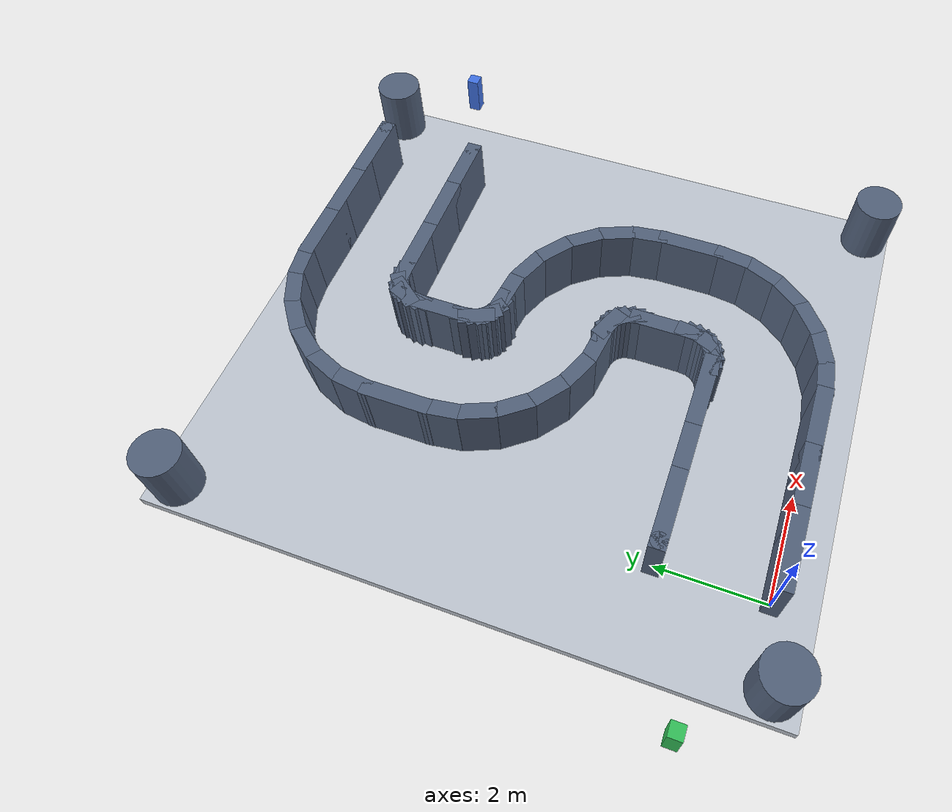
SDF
<?xml version="1.0"?>
<sdf version="1.6">
  <world name="s_shape">
    <light type="directional" name="sun">
      <pose>0 0 10 0 0 0</pose>
      <diffuse>0.8 0.8 0.8 1</diffuse>
      <specular>0.2 0.2 0.2 1</specular>
      <direction>-0.5 0.5 -1</direction>
    </light>
    <light type="ambient" name="ambient_light">
      <diffuse>0.3 0.3 0.3 1</diffuse>
    </light>
    <model name="ground_plane">
      <static>true</static>
      <pose>3.500 5.000 -0.1 0 0 0</pose>
      <link name="link">
        <collision name="collision">
          <geometry><box><size>10.60 11.60 0.2</size></box></geometry>
          <surface>
            <friction><ode><mu>1</mu><mu2>1</mu2></ode></friction>
          </surface>
        </collision>
        <visual name="visual">
          <geometry><box><size>10.60 11.60 0.2</size></box></geometry>
          <material>
            <ambient>0.75 0.78 0.82 1</ambient>
            <diffuse>0.75 0.78 0.82 1</diffuse>
          </material>
        </visual>
      </link>
    </model>
    <!-- ============ 迷宫墙体（深蓝灰；box 墙段 + 圆柱圆头） ============ -->
    <model name="wall_00">
      <static>true</static>
      <pose>0.583 2.000 0.600 0 0 0.0000</pose>
      <link name="link">
        <collision name="collision">
          <geometry><box><size>1.467 0.300 1.2</size></box></geometry>
        </collision>
        <visual name="visual">
          <geometry><box><size>1.467 0.300 1.2</size></box></geometry>
          <material><ambient>0.32 0.38 0.48 1</ambient><diffuse>0.32 0.38 0.48 1</diffuse></material>
        </visual>
      </link>
    </model>
    <model name="wall_01">
      <static>true</static>
      <pose>0.583 0.000 0.600 0 0 0.0000</pose>
      <link name="link">
        <collision name="collision">
          <geometry><box><size>1.467 0.300 1.2</size></box></geometry>
        </collision>
        <visual name="visual">
          <geometry><box><size>1.467 0.300 1.2</size></box></geometry>
          <material><ambient>0.32 0.38 0.48 1</ambient><diffuse>0.32 0.38 0.48 1</diffuse></material>
        </visual>
      </link>
    </model>
    <model name="wall_02">
      <static>true</static>
      <pose>1.750 2.000 0.600 0 0 0.0000</pose>
      <link name="link">
        <collision name="collision">
          <geometry><box><size>1.467 0.300 1.2</size></box></geometry>
        </collision>
        <visual name="visual">
          <geometry><box><size>1.467 0.300 1.2</size></box></geometry>
          <material><ambient>0.32 0.38 0.48 1</ambient><diffuse>0.32 0.38 0.48 1</diffuse></material>
        </visual>
      </link>
    </model>
    <model name="wall_03">
      <static>true</static>
      <pose>1.750 0.000 0.600 0 0 0.0000</pose>
      <link name="link">
        <collision name="collision">
          <geometry><box><size>1.467 0.300 1.2</size></box></geometry>
        </collision>
        <visual name="visual">
          <geometry><box><size>1.467 0.300 1.2</size></box></geometry>
          <material><ambient>0.32 0.38 0.48 1</ambient><diffuse>0.32 0.38 0.48 1</diffuse></material>
        </visual>
      </link>
    </model>
    <model name="wall_04">
      <static>true</static>
      <pose>2.917 2.000 0.600 0 0 0.0000</pose>
      <link name="link">
        <collision name="collision">
          <geometry><box><size>1.467 0.300 1.2</size></box></geometry>
        </collision>
        <visual name="visual">
          <geometry><box><size>1.467 0.300 1.2</size></box></geometry>
          <material><ambient>0.32 0.38 0.48 1</ambient><diffuse>0.32 0.38 0.48 1</diffuse></material>
        </visual>
      </link>
    </model>
    <model name="wall_05">
      <static>true</static>
      <pose>2.917 0.000 0.600 0 0 0.0000</pose>
      <link name="link">
        <collision name="collision">
          <geometry><box><size>1.467 0.300 1.2</size></box></geometry>
        </collision>
        <visual name="visual">
          <geometry><box><size>1.467 0.300 1.2</size></box></geometry>
          <material><ambient>0.32 0.38 0.48 1</ambient><diffuse>0.32 0.38 0.48 1</diffuse></material>
        </visual>
      </link>
    </model>
    <model name="wall_06">
      <static>true</static>
      <pose>3.564 2.017 0.600 0 0 0.1309</pose>
      <link name="link">
        <collision name="collision">
          <geometry><box><size>0.692 0.300 1.2</size></box></geometry>
        </collision>
        <visual name="visual">
          <geometry><box><size>0.692 0.300 1.2</size></box></geometry>
          <material><ambient>0.32 0.38 0.48 1</ambient><diffuse>0.32 0.38 0.48 1</diffuse></material>
        </visual>
      </link>
    </model>
    <model name="wall_07">
      <static>true</static>
      <pose>3.825 0.034 0.600 0 0 0.1309</pose>
      <link name="link">
        <collision name="collision">
          <geometry><box><size>0.692 0.300 1.2</size></box></geometry>
        </collision>
        <visual name="visual">
          <geometry><box><size>0.692 0.300 1.2</size></box></geometry>
          <material><ambient>0.32 0.38 0.48 1</ambient><diffuse>0.32 0.38 0.48 1</diffuse></material>
        </visual>
      </link>
    </model>
    <model name="wall_08">
      <static>true</static>
      <pose>3.686 2.050 0.600 0 0 0.3927</pose>
      <link name="link">
        <collision name="collision">
          <geometry><box><size>0.692 0.300 1.2</size></box></geometry>
        </collision>
        <visual name="visual">
          <geometry><box><size>0.692 0.300 1.2</size></box></geometry>
          <material><ambient>0.32 0.38 0.48 1</ambient><diffuse>0.32 0.38 0.48 1</diffuse></material>
        </visual>
      </link>
    </model>
    <model name="wall_09">
      <static>true</static>
      <pose>4.452 0.202 0.600 0 0 0.3927</pose>
      <link name="link">
        <collision name="collision">
          <geometry><box><size>0.692 0.300 1.2</size></box></geometry>
        </collision>
        <visual name="visual">
          <geometry><box><size>0.692 0.300 1.2</size></box></geometry>
          <material><ambient>0.32 0.38 0.48 1</ambient><diffuse>0.32 0.38 0.48 1</diffuse></material>
        </visual>
      </link>
    </model>
    <model name="wall_10">
      <static>true</static>
      <pose>3.797 2.114 0.600 0 0 0.6545</pose>
      <link name="link">
        <collision name="collision">
          <geometry><box><size>0.692 0.300 1.2</size></box></geometry>
        </collision>
        <visual name="visual">
          <geometry><box><size>0.692 0.300 1.2</size></box></geometry>
          <material><ambient>0.32 0.38 0.48 1</ambient><diffuse>0.32 0.38 0.48 1</diffuse></material>
        </visual>
      </link>
    </model>
    <model name="wall_11">
      <static>true</static>
      <pose>5.014 0.527 0.600 0 0 0.6545</pose>
      <link name="link">
        <collision name="collision">
          <geometry><box><size>0.692 0.300 1.2</size></box></geometry>
        </collision>
        <visual name="visual">
          <geometry><box><size>0.692 0.300 1.2</size></box></geometry>
          <material><ambient>0.32 0.38 0.48 1</ambient><diffuse>0.32 0.38 0.48 1</diffuse></material>
        </visual>
      </link>
    </model>
    <model name="wall_12">
      <static>true</static>
      <pose>3.886 2.203 0.600 0 0 0.9163</pose>
      <link name="link">
        <collision name="collision">
          <geometry><box><size>0.692 0.300 1.2</size></box></geometry>
        </collision>
        <visual name="visual">
          <geometry><box><size>0.692 0.300 1.2</size></box></geometry>
          <material><ambient>0.32 0.38 0.48 1</ambient><diffuse>0.32 0.38 0.48 1</diffuse></material>
        </visual>
      </link>
    </model>
    <model name="wall_13">
      <static>true</static>
      <pose>5.473 0.986 0.600 0 0 0.9163</pose>
      <link name="link">
        <collision name="collision">
          <geometry><box><size>0.692 0.300 1.2</size></box></geometry>
        </collision>
        <visual name="visual">
          <geometry><box><size>0.692 0.300 1.2</size></box></geometry>
          <material><ambient>0.32 0.38 0.48 1</ambient><diffuse>0.32 0.38 0.48 1</diffuse></material>
        </visual>
      </link>
    </model>
    <model name="wall_14">
      <static>true</static>
      <pose>3.950 2.314 0.600 0 0 1.1781</pose>
      <link name="link">
        <collision name="collision">
          <geometry><box><size>0.692 0.300 1.2</size></box></geometry>
        </collision>
        <visual name="visual">
          <geometry><box><size>0.692 0.300 1.2</size></box></geometry>
          <material><ambient>0.32 0.38 0.48 1</ambient><diffuse>0.32 0.38 0.48 1</diffuse></material>
        </visual>
      </link>
    </model>
    <model name="wall_15">
      <static>true</static>
      <pose>5.798 1.548 0.600 0 0 1.1781</pose>
      <link name="link">
        <collision name="collision">
          <geometry><box><size>0.692 0.300 1.2</size></box></geometry>
        </collision>
        <visual name="visual">
          <geometry><box><size>0.692 0.300 1.2</size></box></geometry>
          <material><ambient>0.32 0.38 0.48 1</ambient><diffuse>0.32 0.38 0.48 1</diffuse></material>
        </visual>
      </link>
    </model>
    <model name="wall_16">
      <static>true</static>
      <pose>3.983 2.436 0.600 0 0 1.4399</pose>
      <link name="link">
        <collision name="collision">
          <geometry><box><size>0.692 0.300 1.2</size></box></geometry>
        </collision>
        <visual name="visual">
          <geometry><box><size>0.692 0.300 1.2</size></box></geometry>
          <material><ambient>0.32 0.38 0.48 1</ambient><diffuse>0.32 0.38 0.48 1</diffuse></material>
        </visual>
      </link>
    </model>
    <model name="wall_17">
      <static>true</static>
      <pose>5.966 2.175 0.600 0 0 1.4399</pose>
      <link name="link">
        <collision name="collision">
          <geometry><box><size>0.692 0.300 1.2</size></box></geometry>
        </collision>
        <visual name="visual">
          <geometry><box><size>0.692 0.300 1.2</size></box></geometry>
          <material><ambient>0.32 0.38 0.48 1</ambient><diffuse>0.32 0.38 0.48 1</diffuse></material>
        </visual>
      </link>
    </model>
    <model name="wall_18">
      <static>true</static>
      <pose>4.000 3.000 0.600 0 0 1.5708</pose>
      <link name="link">
        <collision name="collision">
          <geometry><box><size>1.300 0.300 1.2</size></box></geometry>
        </collision>
        <visual name="visual">
          <geometry><box><size>1.300 0.300 1.2</size></box></geometry>
          <material><ambient>0.32 0.38 0.48 1</ambient><diffuse>0.32 0.38 0.48 1</diffuse></material>
        </visual>
      </link>
    </model>
    <model name="wall_19">
      <static>true</static>
      <pose>6.000 3.000 0.600 0 0 1.5708</pose>
      <link name="link">
        <collision name="collision">
          <geometry><box><size>1.300 0.300 1.2</size></box></geometry>
        </collision>
        <visual name="visual">
          <geometry><box><size>1.300 0.300 1.2</size></box></geometry>
          <material><ambient>0.32 0.38 0.48 1</ambient><diffuse>0.32 0.38 0.48 1</diffuse></material>
        </visual>
      </link>
    </model>
    <model name="wall_20">
      <static>true</static>
      <pose>3.983 3.564 0.600 0 0 1.7017</pose>
      <link name="link">
        <collision name="collision">
          <geometry><box><size>0.692 0.300 1.2</size></box></geometry>
        </collision>
        <visual name="visual">
          <geometry><box><size>0.692 0.300 1.2</size></box></geometry>
          <material><ambient>0.32 0.38 0.48 1</ambient><diffuse>0.32 0.38 0.48 1</diffuse></material>
        </visual>
      </link>
    </model>
    <model name="wall_21">
      <static>true</static>
      <pose>5.966 3.825 0.600 0 0 1.7017</pose>
      <link name="link">
        <collision name="collision">
          <geometry><box><size>0.692 0.300 1.2</size></box></geometry>
        </collision>
        <visual name="visual">
          <geometry><box><size>0.692 0.300 1.2</size></box></geometry>
          <material><ambient>0.32 0.38 0.48 1</ambient><diffuse>0.32 0.38 0.48 1</diffuse></material>
        </visual>
      </link>
    </model>
    <model name="wall_22">
      <static>true</static>
      <pose>3.950 3.686 0.600 0 0 1.9635</pose>
      <link name="link">
        <collision name="collision">
          <geometry><box><size>0.692 0.300 1.2</size></box></geometry>
        </collision>
        <visual name="visual">
          <geometry><box><size>0.692 0.300 1.2</size></box></geometry>
          <material><ambient>0.32 0.38 0.48 1</ambient><diffuse>0.32 0.38 0.48 1</diffuse></material>
        </visual>
      </link>
    </model>
    <model name="wall_23">
      <static>true</static>
      <pose>5.798 4.452 0.600 0 0 1.9635</pose>
      <link name="link">
        <collision name="collision">
          <geometry><box><size>0.692 0.300 1.2</size></box></geometry>
        </collision>
        <visual name="visual">
          <geometry><box><size>0.692 0.300 1.2</size></box></geometry>
          <material><ambient>0.32 0.38 0.48 1</ambient><diffuse>0.32 0.38 0.48 1</diffuse></material>
        </visual>
      </link>
    </model>
    <model name="wall_24">
      <static>true</static>
      <pose>3.886 3.797 0.600 0 0 2.2253</pose>
      <link name="link">
        <collision name="collision">
          <geometry><box><size>0.692 0.300 1.2</size></box></geometry>
        </collision>
        <visual name="visual">
          <geometry><box><size>0.692 0.300 1.2</size></box></geometry>
          <material><ambient>0.32 0.38 0.48 1</ambient><diffuse>0.32 0.38 0.48 1</diffuse></material>
        </visual>
      </link>
    </model>
    <model name="wall_25">
      <static>true</static>
      <pose>5.473 5.014 0.600 0 0 2.2253</pose>
      <link name="link">
        <collision name="collision">
          <geometry><box><size>0.692 0.300 1.2</size></box></geometry>
        </collision>
        <visual name="visual">
          <geometry><box><size>0.692 0.300 1.2</size></box></geometry>
          <material><ambient>0.32 0.38 0.48 1</ambient><diffuse>0.32 0.38 0.48 1</diffuse></material>
        </visual>
      </link>
    </model>
    <model name="wall_26">
      <static>true</static>
      <pose>3.797 3.886 0.600 0 0 2.4871</pose>
      <link name="link">
        <collision name="collision">
          <geometry><box><size>0.692 0.300 1.2</size></box></geometry>
        </collision>
        <visual name="visual">
          <geometry><box><size>0.692 0.300 1.2</size></box></geometry>
          <material><ambient>0.32 0.38 0.48 1</ambient><diffuse>0.32 0.38 0.48 1</diffuse></material>
        </visual>
      </link>
    </model>
    <model name="wall_27">
      <static>true</static>
      <pose>5.014 5.473 0.600 0 0 2.4871</pose>
      <link name="link">
        <collision name="collision">
          <geometry><box><size>0.692 0.300 1.2</size></box></geometry>
        </collision>
        <visual name="visual">
          <geometry><box><size>0.692 0.300 1.2</size></box></geometry>
          <material><ambient>0.32 0.38 0.48 1</ambient><diffuse>0.32 0.38 0.48 1</diffuse></material>
        </visual>
      </link>
    </model>
    <model name="wall_28">
      <static>true</static>
      <pose>3.686 3.950 0.600 0 0 2.7489</pose>
      <link name="link">
        <collision name="collision">
          <geometry><box><size>0.692 0.300 1.2</size></box></geometry>
        </collision>
        <visual name="visual">
          <geometry><box><size>0.692 0.300 1.2</size></box></geometry>
          <material><ambient>0.32 0.38 0.48 1</ambient><diffuse>0.32 0.38 0.48 1</diffuse></material>
        </visual>
      </link>
    </model>
    <model name="wall_29">
      <static>true</static>
      <pose>4.452 5.798 0.600 0 0 2.7489</pose>
      <link name="link">
        <collision name="collision">
          <geometry><box><size>0.692 0.300 1.2</size></box></geometry>
        </collision>
        <visual name="visual">
          <geometry><box><size>0.692 0.300 1.2</size></box></geometry>
          <material><ambient>0.32 0.38 0.48 1</ambient><diffuse>0.32 0.38 0.48 1</diffuse></material>
        </visual>
      </link>
    </model>
    <model name="wall_30">
      <static>true</static>
      <pose>3.564 3.983 0.600 0 0 3.0107</pose>
      <link name="link">
        <collision name="collision">
          <geometry><box><size>0.692 0.300 1.2</size></box></geometry>
        </collision>
        <visual name="visual">
          <geometry><box><size>0.692 0.300 1.2</size></box></geometry>
          <material><ambient>0.32 0.38 0.48 1</ambient><diffuse>0.32 0.38 0.48 1</diffuse></material>
        </visual>
      </link>
    </model>
    <model name="wall_31">
      <static>true</static>
      <pose>3.825 5.966 0.600 0 0 3.0107</pose>
      <link name="link">
        <collision name="collision">
          <geometry><box><size>0.692 0.300 1.2</size></box></geometry>
        </collision>
        <visual name="visual">
          <geometry><box><size>0.692 0.300 1.2</size></box></geometry>
          <material><ambient>0.32 0.38 0.48 1</ambient><diffuse>0.32 0.38 0.48 1</diffuse></material>
        </visual>
      </link>
    </model>
    <model name="wall_32">
      <static>true</static>
      <pose>3.175 4.034 0.600 0 0 3.0107</pose>
      <link name="link">
        <collision name="collision">
          <geometry><box><size>0.692 0.300 1.2</size></box></geometry>
        </collision>
        <visual name="visual">
          <geometry><box><size>0.692 0.300 1.2</size></box></geometry>
          <material><ambient>0.32 0.38 0.48 1</ambient><diffuse>0.32 0.38 0.48 1</diffuse></material>
        </visual>
      </link>
    </model>
    <model name="wall_33">
      <static>true</static>
      <pose>3.436 6.017 0.600 0 0 3.0107</pose>
      <link name="link">
        <collision name="collision">
          <geometry><box><size>0.692 0.300 1.2</size></box></geometry>
        </collision>
        <visual name="visual">
          <geometry><box><size>0.692 0.300 1.2</size></box></geometry>
          <material><ambient>0.32 0.38 0.48 1</ambient><diffuse>0.32 0.38 0.48 1</diffuse></material>
        </visual>
      </link>
    </model>
    <model name="wall_34">
      <static>true</static>
      <pose>2.548 4.202 0.600 0 0 2.7489</pose>
      <link name="link">
        <collision name="collision">
          <geometry><box><size>0.692 0.300 1.2</size></box></geometry>
        </collision>
        <visual name="visual">
          <geometry><box><size>0.692 0.300 1.2</size></box></geometry>
          <material><ambient>0.32 0.38 0.48 1</ambient><diffuse>0.32 0.38 0.48 1</diffuse></material>
        </visual>
      </link>
    </model>
    <model name="wall_35">
      <static>true</static>
      <pose>3.314 6.050 0.600 0 0 2.7489</pose>
      <link name="link">
        <collision name="collision">
          <geometry><box><size>0.692 0.300 1.2</size></box></geometry>
        </collision>
        <visual name="visual">
          <geometry><box><size>0.692 0.300 1.2</size></box></geometry>
          <material><ambient>0.32 0.38 0.48 1</ambient><diffuse>0.32 0.38 0.48 1</diffuse></material>
        </visual>
      </link>
    </model>
    <model name="wall_36">
      <static>true</static>
      <pose>1.986 4.527 0.600 0 0 2.4871</pose>
      <link name="link">
        <collision name="collision">
          <geometry><box><size>0.692 0.300 1.2</size></box></geometry>
        </collision>
        <visual name="visual">
          <geometry><box><size>0.692 0.300 1.2</size></box></geometry>
          <material><ambient>0.32 0.38 0.48 1</ambient><diffuse>0.32 0.38 0.48 1</diffuse></material>
        </visual>
      </link>
    </model>
    <model name="wall_37">
      <static>true</static>
      <pose>3.203 6.114 0.600 0 0 2.4871</pose>
      <link name="link">
        <collision name="collision">
          <geometry><box><size>0.692 0.300 1.2</size></box></geometry>
        </collision>
        <visual name="visual">
          <geometry><box><size>0.692 0.300 1.2</size></box></geometry>
          <material><ambient>0.32 0.38 0.48 1</ambient><diffuse>0.32 0.38 0.48 1</diffuse></material>
        </visual>
      </link>
    </model>
    <model name="wall_38">
      <static>true</static>
      <pose>1.527 4.986 0.600 0 0 2.2253</pose>
      <link name="link">
        <collision name="collision">
          <geometry><box><size>0.692 0.300 1.2</size></box></geometry>
        </collision>
        <visual name="visual">
          <geometry><box><size>0.692 0.300 1.2</size></box></geometry>
          <material><ambient>0.32 0.38 0.48 1</ambient><diffuse>0.32 0.38 0.48 1</diffuse></material>
        </visual>
      </link>
    </model>
    <model name="wall_39">
      <static>true</static>
      <pose>3.114 6.203 0.600 0 0 2.2253</pose>
      <link name="link">
        <collision name="collision">
          <geometry><box><size>0.692 0.300 1.2</size></box></geometry>
        </collision>
        <visual name="visual">
          <geometry><box><size>0.692 0.300 1.2</size></box></geometry>
          <material><ambient>0.32 0.38 0.48 1</ambient><diffuse>0.32 0.38 0.48 1</diffuse></material>
        </visual>
      </link>
    </model>
    <model name="wall_40">
      <static>true</static>
      <pose>1.202 5.548 0.600 0 0 1.9635</pose>
      <link name="link">
        <collision name="collision">
          <geometry><box><size>0.692 0.300 1.2</size></box></geometry>
        </collision>
        <visual name="visual">
          <geometry><box><size>0.692 0.300 1.2</size></box></geometry>
          <material><ambient>0.32 0.38 0.48 1</ambient><diffuse>0.32 0.38 0.48 1</diffuse></material>
        </visual>
      </link>
    </model>
    <model name="wall_41">
      <static>true</static>
      <pose>3.050 6.314 0.600 0 0 1.9635</pose>
      <link name="link">
        <collision name="collision">
          <geometry><box><size>0.692 0.300 1.2</size></box></geometry>
        </collision>
        <visual name="visual">
          <geometry><box><size>0.692 0.300 1.2</size></box></geometry>
          <material><ambient>0.32 0.38 0.48 1</ambient><diffuse>0.32 0.38 0.48 1</diffuse></material>
        </visual>
      </link>
    </model>
    <model name="wall_42">
      <static>true</static>
      <pose>1.034 6.175 0.600 0 0 1.7017</pose>
      <link name="link">
        <collision name="collision">
          <geometry><box><size>0.692 0.300 1.2</size></box></geometry>
        </collision>
        <visual name="visual">
          <geometry><box><size>0.692 0.300 1.2</size></box></geometry>
          <material><ambient>0.32 0.38 0.48 1</ambient><diffuse>0.32 0.38 0.48 1</diffuse></material>
        </visual>
      </link>
    </model>
    <model name="wall_43">
      <static>true</static>
      <pose>3.017 6.436 0.600 0 0 1.7017</pose>
      <link name="link">
        <collision name="collision">
          <geometry><box><size>0.692 0.300 1.2</size></box></geometry>
        </collision>
        <visual name="visual">
          <geometry><box><size>0.692 0.300 1.2</size></box></geometry>
          <material><ambient>0.32 0.38 0.48 1</ambient><diffuse>0.32 0.38 0.48 1</diffuse></material>
        </visual>
      </link>
    </model>
    <model name="wall_44">
      <static>true</static>
      <pose>1.000 7.000 0.600 0 0 1.5708</pose>
      <link name="link">
        <collision name="collision">
          <geometry><box><size>1.300 0.300 1.2</size></box></geometry>
        </collision>
        <visual name="visual">
          <geometry><box><size>1.300 0.300 1.2</size></box></geometry>
          <material><ambient>0.32 0.38 0.48 1</ambient><diffuse>0.32 0.38 0.48 1</diffuse></material>
        </visual>
      </link>
    </model>
    <model name="wall_45">
      <static>true</static>
      <pose>3.000 7.000 0.600 0 0 1.5708</pose>
      <link name="link">
        <collision name="collision">
          <geometry><box><size>1.300 0.300 1.2</size></box></geometry>
        </collision>
        <visual name="visual">
          <geometry><box><size>1.300 0.300 1.2</size></box></geometry>
          <material><ambient>0.32 0.38 0.48 1</ambient><diffuse>0.32 0.38 0.48 1</diffuse></material>
        </visual>
      </link>
    </model>
    <model name="wall_46">
      <static>true</static>
      <pose>1.034 7.825 0.600 0 0 1.4399</pose>
      <link name="link">
        <collision name="collision">
          <geometry><box><size>0.692 0.300 1.2</size></box></geometry>
        </collision>
        <visual name="visual">
          <geometry><box><size>0.692 0.300 1.2</size></box></geometry>
          <material><ambient>0.32 0.38 0.48 1</ambient><diffuse>0.32 0.38 0.48 1</diffuse></material>
        </visual>
      </link>
    </model>
    <model name="wall_47">
      <static>true</static>
      <pose>3.017 7.564 0.600 0 0 1.4399</pose>
      <link name="link">
        <collision name="collision">
          <geometry><box><size>0.692 0.300 1.2</size></box></geometry>
        </collision>
        <visual name="visual">
          <geometry><box><size>0.692 0.300 1.2</size></box></geometry>
          <material><ambient>0.32 0.38 0.48 1</ambient><diffuse>0.32 0.38 0.48 1</diffuse></material>
        </visual>
      </link>
    </model>
    <model name="wall_48">
      <static>true</static>
      <pose>1.202 8.452 0.600 0 0 1.1781</pose>
      <link name="link">
        <collision name="collision">
          <geometry><box><size>0.692 0.300 1.2</size></box></geometry>
        </collision>
        <visual name="visual">
          <geometry><box><size>0.692 0.300 1.2</size></box></geometry>
          <material><ambient>0.32 0.38 0.48 1</ambient><diffuse>0.32 0.38 0.48 1</diffuse></material>
        </visual>
      </link>
    </model>
    <model name="wall_49">
      <static>true</static>
      <pose>3.050 7.686 0.600 0 0 1.1781</pose>
      <link name="link">
        <collision name="collision">
          <geometry><box><size>0.692 0.300 1.2</size></box></geometry>
        </collision>
        <visual name="visual">
          <geometry><box><size>0.692 0.300 1.2</size></box></geometry>
          <material><ambient>0.32 0.38 0.48 1</ambient><diffuse>0.32 0.38 0.48 1</diffuse></material>
        </visual>
      </link>
    </model>
    <model name="wall_50">
      <static>true</static>
      <pose>1.527 9.014 0.600 0 0 0.9163</pose>
      <link name="link">
        <collision name="collision">
          <geometry><box><size>0.692 0.300 1.2</size></box></geometry>
        </collision>
        <visual name="visual">
          <geometry><box><size>0.692 0.300 1.2</size></box></geometry>
          <material><ambient>0.32 0.38 0.48 1</ambient><diffuse>0.32 0.38 0.48 1</diffuse></material>
        </visual>
      </link>
    </model>
    <model name="wall_51">
      <static>true</static>
      <pose>3.114 7.797 0.600 0 0 0.9163</pose>
      <link name="link">
        <collision name="collision">
          <geometry><box><size>0.692 0.300 1.2</size></box></geometry>
        </collision>
        <visual name="visual">
          <geometry><box><size>0.692 0.300 1.2</size></box></geometry>
          <material><ambient>0.32 0.38 0.48 1</ambient><diffuse>0.32 0.38 0.48 1</diffuse></material>
        </visual>
      </link>
    </model>
    <model name="wall_52">
      <static>true</static>
      <pose>1.986 9.473 0.600 0 0 0.6545</pose>
      <link name="link">
        <collision name="collision">
          <geometry><box><size>0.692 0.300 1.2</size></box></geometry>
        </collision>
        <visual name="visual">
          <geometry><box><size>0.692 0.300 1.2</size></box></geometry>
          <material><ambient>0.32 0.38 0.48 1</ambient><diffuse>0.32 0.38 0.48 1</diffuse></material>
        </visual>
      </link>
    </model>
    <model name="wall_53">
      <static>true</static>
      <pose>3.203 7.886 0.600 0 0 0.6545</pose>
      <link name="link">
        <collision name="collision">
          <geometry><box><size>0.692 0.300 1.2</size></box></geometry>
        </collision>
        <visual name="visual">
          <geometry><box><size>0.692 0.300 1.2</size></box></geometry>
          <material><ambient>0.32 0.38 0.48 1</ambient><diffuse>0.32 0.38 0.48 1</diffuse></material>
        </visual>
      </link>
    </model>
    <model name="wall_54">
      <static>true</static>
      <pose>2.548 9.798 0.600 0 0 0.3927</pose>
      <link name="link">
        <collision name="collision">
          <geometry><box><size>0.692 0.300 1.2</size></box></geometry>
        </collision>
        <visual name="visual">
          <geometry><box><size>0.692 0.300 1.2</size></box></geometry>
          <material><ambient>0.32 0.38 0.48 1</ambient><diffuse>0.32 0.38 0.48 1</diffuse></material>
        </visual>
      </link>
    </model>
    <model name="wall_55">
      <static>true</static>
      <pose>3.314 7.950 0.600 0 0 0.3927</pose>
      <link name="link">
        <collision name="collision">
          <geometry><box><size>0.692 0.300 1.2</size></box></geometry>
        </collision>
        <visual name="visual">
          <geometry><box><size>0.692 0.300 1.2</size></box></geometry>
          <material><ambient>0.32 0.38 0.48 1</ambient><diffuse>0.32 0.38 0.48 1</diffuse></material>
        </visual>
      </link>
    </model>
    <model name="wall_56">
      <static>true</static>
      <pose>3.175 9.966 0.600 0 0 0.1309</pose>
      <link name="link">
        <collision name="collision">
          <geometry><box><size>0.692 0.300 1.2</size></box></geometry>
        </collision>
        <visual name="visual">
          <geometry><box><size>0.692 0.300 1.2</size></box></geometry>
          <material><ambient>0.32 0.38 0.48 1</ambient><diffuse>0.32 0.38 0.48 1</diffuse></material>
        </visual>
      </link>
    </model>
    <model name="wall_57">
      <static>true</static>
      <pose>3.436 7.983 0.600 0 0 0.1309</pose>
      <link name="link">
        <collision name="collision">
          <geometry><box><size>0.692 0.300 1.2</size></box></geometry>
        </collision>
        <visual name="visual">
          <geometry><box><size>0.692 0.300 1.2</size></box></geometry>
          <material><ambient>0.32 0.38 0.48 1</ambient><diffuse>0.32 0.38 0.48 1</diffuse></material>
        </visual>
      </link>
    </model>
    <model name="wall_58">
      <static>true</static>
      <pose>4.083 10.000 0.600 0 0 0.0000</pose>
      <link name="link">
        <collision name="collision">
          <geometry><box><size>1.467 0.300 1.2</size></box></geometry>
        </collision>
        <visual name="visual">
          <geometry><box><size>1.467 0.300 1.2</size></box></geometry>
          <material><ambient>0.32 0.38 0.48 1</ambient><diffuse>0.32 0.38 0.48 1</diffuse></material>
        </visual>
      </link>
    </model>
    <model name="wall_59">
      <static>true</static>
      <pose>4.083 8.000 0.600 0 0 0.0000</pose>
      <link name="link">
        <collision name="collision">
          <geometry><box><size>1.467 0.300 1.2</size></box></geometry>
        </collision>
        <visual name="visual">
          <geometry><box><size>1.467 0.300 1.2</size></box></geometry>
          <material><ambient>0.32 0.38 0.48 1</ambient><diffuse>0.32 0.38 0.48 1</diffuse></material>
        </visual>
      </link>
    </model>
    <model name="wall_60">
      <static>true</static>
      <pose>5.250 10.000 0.600 0 0 0.0000</pose>
      <link name="link">
        <collision name="collision">
          <geometry><box><size>1.467 0.300 1.2</size></box></geometry>
        </collision>
        <visual name="visual">
          <geometry><box><size>1.467 0.300 1.2</size></box></geometry>
          <material><ambient>0.32 0.38 0.48 1</ambient><diffuse>0.32 0.38 0.48 1</diffuse></material>
        </visual>
      </link>
    </model>
    <model name="wall_61">
      <static>true</static>
      <pose>5.250 8.000 0.600 0 0 0.0000</pose>
      <link name="link">
        <collision name="collision">
          <geometry><box><size>1.467 0.300 1.2</size></box></geometry>
        </collision>
        <visual name="visual">
          <geometry><box><size>1.467 0.300 1.2</size></box></geometry>
          <material><ambient>0.32 0.38 0.48 1</ambient><diffuse>0.32 0.38 0.48 1</diffuse></material>
        </visual>
      </link>
    </model>
    <model name="wall_62">
      <static>true</static>
      <pose>6.417 10.000 0.600 0 0 0.0000</pose>
      <link name="link">
        <collision name="collision">
          <geometry><box><size>1.467 0.300 1.2</size></box></geometry>
        </collision>
        <visual name="visual">
          <geometry><box><size>1.467 0.300 1.2</size></box></geometry>
          <material><ambient>0.32 0.38 0.48 1</ambient><diffuse>0.32 0.38 0.48 1</diffuse></material>
        </visual>
      </link>
    </model>
    <model name="wall_63">
      <static>true</static>
      <pose>6.417 8.000 0.600 0 0 0.0000</pose>
      <link name="link">
        <collision name="collision">
          <geometry><box><size>1.467 0.300 1.2</size></box></geometry>
        </collision>
        <visual name="visual">
          <geometry><box><size>1.467 0.300 1.2</size></box></geometry>
          <material><ambient>0.32 0.38 0.48 1</ambient><diffuse>0.32 0.38 0.48 1</diffuse></material>
        </visual>
      </link>
    </model>
    <model name="pillar_00">
      <static>true</static>
      <pose>0.000 2.000 0.600 0 0 0</pose>
      <link name="link">
        <collision name="collision">
          <geometry><cylinder><radius>0.150</radius><length>1.2</length></cylinder></geometry>
        </collision>
        <visual name="visual">
          <geometry><cylinder><radius>0.150</radius><length>1.2</length></cylinder></geometry>
          <material><ambient>0.32 0.38 0.48 1</ambient><diffuse>0.32 0.38 0.48 1</diffuse></material>
        </visual>
      </link>
    </model>
    <model name="pillar_01">
      <static>true</static>
      <pose>7.000 10.000 0.600 0 0 0</pose>
      <link name="link">
        <collision name="collision">
          <geometry><cylinder><radius>0.150</radius><length>1.2</length></cylinder></geometry>
        </collision>
        <visual name="visual">
          <geometry><cylinder><radius>0.150</radius><length>1.2</length></cylinder></geometry>
          <material><ambient>0.32 0.38 0.48 1</ambient><diffuse>0.32 0.38 0.48 1</diffuse></material>
        </visual>
      </link>
    </model>
    <model name="pillar_02">
      <static>true</static>
      <pose>0.000 0.000 0.600 0 0 0</pose>
      <link name="link">
        <collision name="collision">
          <geometry><cylinder><radius>0.150</radius><length>1.2</length></cylinder></geometry>
        </collision>
        <visual name="visual">
          <geometry><cylinder><radius>0.150</radius><length>1.2</length></cylinder></geometry>
          <material><ambient>0.32 0.38 0.48 1</ambient><diffuse>0.32 0.38 0.48 1</diffuse></material>
        </visual>
      </link>
    </model>
    <model name="pillar_03">
      <static>true</static>
      <pose>7.000 8.000 0.600 0 0 0</pose>
      <link name="link">
        <collision name="collision">
          <geometry><cylinder><radius>0.150</radius><length>1.2</length></cylinder></geometry>
        </collision>
        <visual name="visual">
          <geometry><cylinder><radius>0.150</radius><length>1.2</length></cylinder></geometry>
          <material><ambient>0.32 0.38 0.48 1</ambient><diffuse>0.32 0.38 0.48 1</diffuse></material>
        </visual>
      </link>
    </model>
    <model name="pillar_04">
      <static>true</static>
      <pose>-1.300 -0.300 0.600 0 0 0</pose>
      <link name="link">
        <collision name="collision">
          <geometry><cylinder><radius>0.450</radius><length>1.2</length></cylinder></geometry>
        </collision>
        <visual name="visual">
          <geometry><cylinder><radius>0.450</radius><length>1.2</length></cylinder></geometry>
          <material><ambient>0.32 0.38 0.48 1</ambient><diffuse>0.32 0.38 0.48 1</diffuse></material>
        </visual>
      </link>
    </model>
    <model name="pillar_05">
      <static>true</static>
      <pose>-1.300 10.300 0.600 0 0 0</pose>
      <link name="link">
        <collision name="collision">
          <geometry><cylinder><radius>0.450</radius><length>1.2</length></cylinder></geometry>
        </collision>
        <visual name="visual">
          <geometry><cylinder><radius>0.450</radius><length>1.2</length></cylinder></geometry>
          <material><ambient>0.32 0.38 0.48 1</ambient><diffuse>0.32 0.38 0.48 1</diffuse></material>
        </visual>
      </link>
    </model>
    <model name="pillar_06">
      <static>true</static>
      <pose>8.300 -0.300 0.600 0 0 0</pose>
      <link name="link">
        <collision name="collision">
          <geometry><cylinder><radius>0.450</radius><length>1.2</length></cylinder></geometry>
        </collision>
        <visual name="visual">
          <geometry><cylinder><radius>0.450</radius><length>1.2</length></cylinder></geometry>
          <material><ambient>0.32 0.38 0.48 1</ambient><diffuse>0.32 0.38 0.48 1</diffuse></material>
        </visual>
      </link>
    </model>
    <model name="pillar_07">
      <static>true</static>
      <pose>8.300 10.300 0.600 0 0 0</pose>
      <link name="link">
        <collision name="collision">
          <geometry><cylinder><radius>0.450</radius><length>1.2</length></cylinder></geometry>
        </collision>
        <visual name="visual">
          <geometry><cylinder><radius>0.450</radius><length>1.2</length></cylinder></geometry>
          <material><ambient>0.32 0.38 0.48 1</ambient><diffuse>0.32 0.38 0.48 1</diffuse></material>
        </visual>
      </link>
    </model>
    <!-- ============ 起终点标记柱 ============ -->
    <model name="marker_entry">
      <static>true</static>
      <pose>-2.500 1.000 0.4 0 0 0</pose>
      <link name="link">
        <collision name="collision">
          <geometry><box><size>0.25 0.25 0.8</size></box></geometry>
        </collision>
        <visual name="visual">
          <geometry><box><size>0.25 0.25 0.8</size></box></geometry>
          <material><ambient>0.2 0.75 0.35 1</ambient><diffuse>0.2 0.75 0.35 1</diffuse></material>
        </visual>
      </link>
    </model>
    <model name="marker_exit">
      <static>true</static>
      <pose>9.500 9.000 0.4 0 0 0</pose>
      <link name="link">
        <collision name="collision">
          <geometry><box><size>0.25 0.25 0.8</size></box></geometry>
        </collision>
        <visual name="visual">
          <geometry><box><size>0.25 0.25 0.8</size></box></geometry>
          <material><ambient>0.25 0.45 0.9 1</ambient><diffuse>0.25 0.45 0.9 1</diffuse></material>
        </visual>
      </link>
    </model>
  </world>
</sdf>
